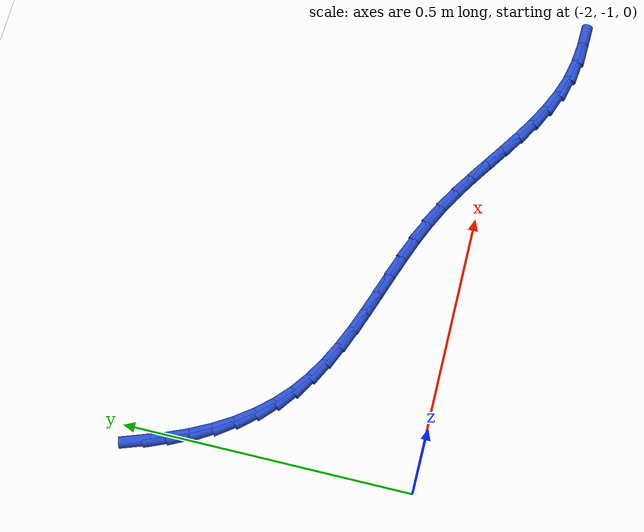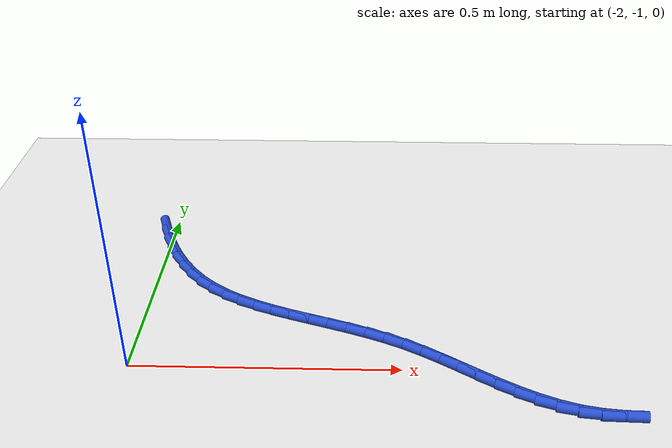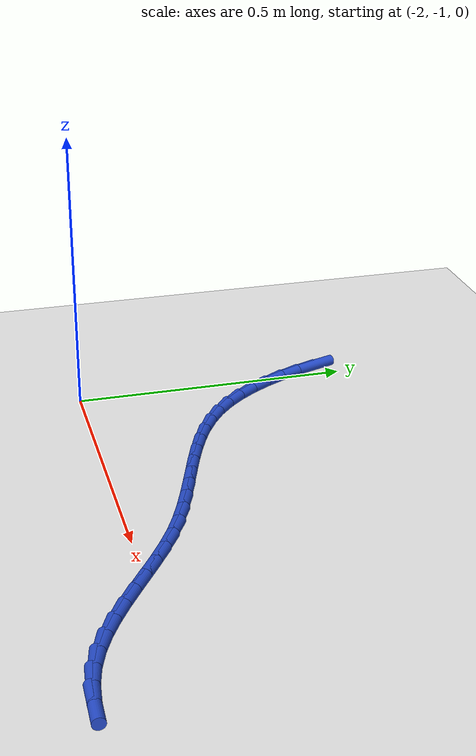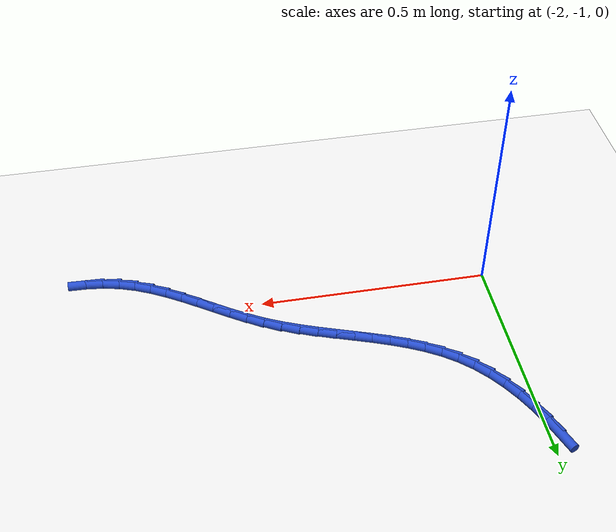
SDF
<sdf version="1.6">
 <world name="default">
  <model name="ground_plane">
   <static>1</static>
   <link name="link">
    <collision name="collision">
     <geometry><plane><normal>0 0 1</normal><size>100 100</size></plane></geometry>
     <surface><friction><ode><mu>100</mu><mu2>50</mu2></ode></friction></surface>
    </collision>
    <visual name="visual">
     <cast_shadows>0</cast_shadows>
     <geometry><plane><normal>0 0 1</normal><size>100 100</size></plane></geometry>
     <material>
      <script><uri>file://media/materials/scripts/gazebo.material</uri><name>Gazebo/WhiteGlow</name></script>
     </material>
    </visual>
   </link>
  </model>
  <model name="line">
   <link name="link_105">
    <pose>-2.020047119603006 -0.5403624268742906 0.01 0 1.57 -1.232494982980391</pose>
    <collision name="collision">
     <geometry><cylinder><radius>0.01</radius><length>0.08</length></cylinder></geometry>
    </collision>
    <visual name="visual">
     <material>
      <script><name>Gazebo/Blue</name><uri>file://media/materials/scripts/gazebo.material</uri></script>
     </material>
     <geometry><cylinder><radius>0.01</radius><length>0.08</length></cylinder></geometry>
    </visual>
   </link>
   <link name="link_106">
    <pose>-2.0069029254073816 -0.5777222687783851 0.01 0 1.57 -1.1684820234117692</pose>
    <collision name="collision">
     <geometry><cylinder><radius>0.01</radius><length>0.08</length></cylinder></geometry>
    </collision>
    <visual name="visual">
     <material>
      <script><name>Gazebo/Blue</name><uri>file://media/materials/scripts/gazebo.material</uri></script>
     </material>
     <geometry><cylinder><radius>0.01</radius><length>0.08</length></cylinder></geometry>
    </visual>
   </link>
   <link name="link_107">
    <pose>-1.991450697756604 -0.6140356885646838 0.01 0 1.57 -1.09928835004914</pose>
    <collision name="collision">
     <geometry><cylinder><radius>0.01</radius><length>0.08</length></cylinder></geometry>
    </collision>
    <visual name="visual">
     <material>
      <script><name>Gazebo/Blue</name><uri>file://media/materials/scripts/gazebo.material</uri></script>
     </material>
     <geometry><cylinder><radius>0.01</radius><length>0.08</length></cylinder></geometry>
    </visual>
   </link>
   <link name="link_108">
    <pose>-1.9736758828556353 -0.6488975337726277 0.01 0 1.57 -1.0235238310936277</pose>
    <collision name="collision">
     <geometry><cylinder><radius>0.01</radius><length>0.08</length></cylinder></geometry>
    </collision>
    <visual name="visual">
     <material>
      <script><name>Gazebo/Blue</name><uri>file://media/materials/scripts/gazebo.material</uri></script>
     </material>
     <geometry><cylinder><radius>0.01</radius><length>0.08</length></cylinder></geometry>
    </visual>
   </link>
   <link name="link_109">
    <pose>-1.9535639269094336 -0.6819026519416584 0.01 0 1.57 -0.9397712680482811</pose>
    <collision name="collision">
     <geometry><cylinder><radius>0.01</radius><length>0.08</length></cylinder></geometry>
    </collision>
    <visual name="visual">
     <material>
      <script><name>Gazebo/Blue</name><uri>file://media/materials/scripts/gazebo.material</uri></script>
     </material>
     <geometry><cylinder><radius>0.01</radius><length>0.08</length></cylinder></geometry>
    </visual>
   </link>
   <link name="link_110">
    <pose>-1.93110027612296 -0.7126458906112154 0.01 0 1.57 -0.8466811147038907</pose>
    <collision name="collision">
     <geometry><cylinder><radius>0.01</radius><length>0.08</length></cylinder></geometry>
    </collision>
    <visual name="visual">
     <material>
      <script><name>Gazebo/Blue</name><uri>file://media/materials/scripts/gazebo.material</uri></script>
     </material>
     <geometry><cylinder><radius>0.01</radius><length>0.08</length></cylinder></geometry>
    </visual>
   </link>
   <link name="link_111">
    <pose>-1.906270376701175 -0.7407220973207403 0.01 0 1.57 -0.7431831060266758</pose>
    <collision name="collision">
     <geometry><cylinder><radius>0.01</radius><length>0.08</length></cylinder></geometry>
    </collision>
    <visual name="visual">
     <material>
      <script><name>Gazebo/Blue</name><uri>file://media/materials/scripts/gazebo.material</uri></script>
     </material>
     <geometry><cylinder><radius>0.01</radius><length>0.08</length></cylinder></geometry>
    </visual>
   </link>
   <link name="link_112">
    <pose>-1.8790599693059928 -0.7657269252111429 0.01 0 1.57 -0.6356111946233544</pose>
    <collision name="collision">
     <geometry><cylinder><radius>0.01</radius><length>0.08</length></cylinder></geometry>
    </collision>
    <visual name="visual">
     <material>
      <script><name>Gazebo/Blue</name><uri>file://media/materials/scripts/gazebo.material</uri></script>
     </material>
     <geometry><cylinder><radius>0.01</radius><length>0.08</length></cylinder></geometry>
    </visual>
   </link>
   <link name="link_113">
    <pose>-1.849544598560535 -0.7875017210695041 0.01 0 1.57 -0.5418009422258452</pose>
    <collision name="collision">
     <geometry><cylinder><radius>0.01</radius><length>0.08</length></cylinder></geometry>
    </collision>
    <visual name="visual">
     <material>
      <script><name>Gazebo/Blue</name><uri>file://media/materials/scripts/gazebo.material</uri></script>
     </material>
     <geometry><cylinder><radius>0.01</radius><length>0.08</length></cylinder></geometry>
    </visual>
   </link>
   <link name="link_114">
    <pose>-1.8180156578913715 -0.8064783699935564 0.01 0 1.57 -0.4657555373181017</pose>
    <collision name="collision">
     <geometry><cylinder><radius>0.01</radius><length>0.08</length></cylinder></geometry>
    </collision>
    <visual name="visual">
     <material>
      <script><name>Gazebo/Blue</name><uri>file://media/materials/scripts/gazebo.material</uri></script>
     </material>
     <geometry><cylinder><radius>0.01</radius><length>0.08</length></cylinder></geometry>
    </visual>
   </link>
   <link name="link_115">
    <pose>-1.7847963075737585 -0.8231756676446296 0.01 0 1.57 -0.4076709689459269</pose>
    <collision name="collision">
     <geometry><cylinder><radius>0.01</radius><length>0.08</length></cylinder></geometry>
    </collision>
    <visual name="visual">
     <material>
      <script><name>Gazebo/Blue</name><uri>file://media/materials/scripts/gazebo.material</uri></script>
     </material>
     <geometry><cylinder><radius>0.01</radius><length>0.08</length></cylinder></geometry>
    </visual>
   </link>
   <link name="link_116">
    <pose>-1.7502097078829548 -0.8381124096840531 0.01 0 1.57 -0.36695062031981823</pose>
    <collision name="collision">
     <geometry><cylinder><radius>0.01</radius><length>0.08</length></cylinder></geometry>
    </collision>
    <visual name="visual">
     <material>
      <script><name>Gazebo/Blue</name><uri>file://media/materials/scripts/gazebo.material</uri></script>
     </material>
     <geometry><cylinder><radius>0.01</radius><length>0.08</length></cylinder></geometry>
    </visual>
   </link>
   <link name="link_117">
    <pose>-1.7145790190942183 -0.851807391773158 0.01 0 1.57 -0.34276279827969464</pose>
    <collision name="collision">
     <geometry><cylinder><radius>0.01</radius><length>0.08</length></cylinder></geometry>
    </collision>
    <visual name="visual">
     <material>
      <script><name>Gazebo/Blue</name><uri>file://media/materials/scripts/gazebo.material</uri></script>
     </material>
     <geometry><cylinder><radius>0.01</radius><length>0.08</length></cylinder></geometry>
    </visual>
   </link>
   <link name="link_118">
    <pose>-1.6782274014828058 -0.8647794095732736 0.01 0 1.57 -0.3343836962771723</pose>
    <collision name="collision">
     <geometry><cylinder><radius>0.01</radius><length>0.08</length></cylinder></geometry>
    </collision>
    <visual name="visual">
     <material>
      <script><name>Gazebo/Blue</name><uri>file://media/materials/scripts/gazebo.material</uri></script>
     </material>
     <geometry><cylinder><radius>0.01</radius><length>0.08</length></cylinder></geometry>
    </visual>
   </link>
   <link name="link_119">
    <pose>-1.641478015323975 -0.8775472587457303 0.01 0 1.57 -0.3413623392494752</pose>
    <collision name="collision">
     <geometry><cylinder><radius>0.01</radius><length>0.08</length></cylinder></geometry>
    </collision>
    <visual name="visual">
     <material>
      <script><name>Gazebo/Blue</name><uri>file://media/materials/scripts/gazebo.material</uri></script>
     </material>
     <geometry><cylinder><radius>0.01</radius><length>0.08</length></cylinder></geometry>
    </visual>
   </link>
   <link name="link_120">
    <pose>-1.6046540208929831 -0.8906297349518579 0.01 0 1.57 -0.3635586043932918</pose>
    <collision name="collision">
     <geometry><cylinder><radius>0.01</radius><length>0.08</length></cylinder></geometry>
    </collision>
    <visual name="visual">
     <material>
      <script><name>Gazebo/Blue</name><uri>file://media/materials/scripts/gazebo.material</uri></script>
     </material>
     <geometry><cylinder><radius>0.01</radius><length>0.08</length></cylinder></geometry>
    </visual>
   </link>
   <link name="link_121">
    <pose>-1.5680785784650888 -0.9045456338529864 0.01 0 1.57 -0.40108302827436554</pose>
    <collision name="collision">
     <geometry><cylinder><radius>0.01</radius><length>0.08</length></cylinder></geometry>
    </collision>
    <visual name="visual">
     <material>
      <script><name>Gazebo/Blue</name><uri>file://media/materials/scripts/gazebo.material</uri></script>
     </material>
     <geometry><cylinder><radius>0.01</radius><length>0.08</length></cylinder></geometry>
    </visual>
   </link>
   <link name="link_122">
    <pose>-1.5320748483155495 -0.919813751110446 0.01 0 1.57 -0.4541338656241375</pose>
    <collision name="collision">
     <geometry><cylinder><radius>0.01</radius><length>0.08</length></cylinder></geometry>
    </collision>
    <visual name="visual">
     <material>
      <script><name>Gazebo/Blue</name><uri>file://media/materials/scripts/gazebo.material</uri></script>
     </material>
     <geometry><cylinder><radius>0.01</radius><length>0.08</length></cylinder></geometry>
    </visual>
   </link>
   <link name="link_123">
    <pose>-1.4969658883533103 -0.9369526732650602 0.01 0 1.57 -0.5150519055747438</pose>
    <collision name="collision">
     <geometry><cylinder><radius>0.01</radius><length>0.08</length></cylinder></geometry>
    </collision>
    <visual name="visual">
     <material>
      <script><name>Gazebo/Blue</name><uri>file://media/materials/scripts/gazebo.material</uri></script>
     </material>
     <geometry><cylinder><radius>0.01</radius><length>0.08</length></cylinder></geometry>
    </visual>
   </link>
   <link name="link_124">
    <pose>-1.4629422894788355 -0.9562103747078321 0.01 0 1.57 -0.5609808548505267</pose>
    <collision name="collision">
     <geometry><cylinder><radius>0.01</radius><length>0.08</length></cylinder></geometry>
    </collision>
    <visual name="visual">
     <material>
      <script><name>Gazebo/Blue</name><uri>file://media/materials/scripts/gazebo.material</uri></script>
     </material>
     <geometry><cylinder><radius>0.01</radius><length>0.08</length></cylinder></geometry>
    </visual>
   </link>
   <link name="link_125">
    <pose>-1.4298020974052525 -0.9770329131996058 0.01 0 1.57 -0.5879639033756182</pose>
    <collision name="collision">
     <geometry><cylinder><radius>0.01</radius><length>0.08</length></cylinder></geometry>
    </collision>
    <visual name="visual">
     <material>
      <script><name>Gazebo/Blue</name><uri>file://media/materials/scripts/gazebo.material</uri></script>
     </material>
     <geometry><cylinder><radius>0.01</radius><length>0.08</length></cylinder></geometry>
    </visual>
   </link>
   <link name="link_126">
    <pose>-1.3972709866371582 -0.998718501928079 0.01 0 1.57 -0.5961847982229376</pose>
    <collision name="collision">
     <geometry><cylinder><radius>0.01</radius><length>0.08</length></cylinder></geometry>
    </collision>
    <visual name="visual">
     <material>
      <script><name>Gazebo/Blue</name><uri>file://media/materials/scripts/gazebo.material</uri></script>
     </material>
     <geometry><cylinder><radius>0.01</radius><length>0.08</length></cylinder></geometry>
    </visual>
   </link>
   <link name="link_127">
    <pose>-1.3650746316791538 -1.0205653540809503 0.01 0 1.57 -0.5854643994127197</pose>
    <collision name="collision">
     <geometry><cylinder><radius>0.01</radius><length>0.08</length></cylinder></geometry>
    </collision>
    <visual name="visual">
     <material>
      <script><name>Gazebo/Blue</name><uri>file://media/materials/scripts/gazebo.material</uri></script>
     </material>
     <geometry><cylinder><radius>0.01</radius><length>0.08</length></cylinder></geometry>
    </visual>
   </link>
   <link name="link_128">
    <pose>-1.3329387070358376 -1.0418716828459174 0.01 0 1.57 -0.5551549225070603</pose>
    <collision name="collision">
     <geometry><cylinder><radius>0.01</radius><length>0.08</length></cylinder></geometry>
    </collision>
    <visual name="visual">
     <material>
      <script><name>Gazebo/Blue</name><uri>file://media/materials/scripts/gazebo.material</uri></script>
     </material>
     <geometry><cylinder><radius>0.01</radius><length>0.08</length></cylinder></geometry>
    </visual>
   </link>
   <link name="link_129">
    <pose>-1.3005888872118079 -1.0619357014106787 0.01 0 1.57 -0.5042215691060516</pose>
    <collision name="collision">
     <geometry><cylinder><radius>0.01</radius><length>0.08</length></cylinder></geometry>
    </collision>
    <visual name="visual">
     <material>
      <script><name>Gazebo/Blue</name><uri>file://media/materials/scripts/gazebo.material</uri></script>
     </material>
     <geometry><cylinder><radius>0.01</radius><length>0.08</length></cylinder></geometry>
    </visual>
   </link>
   <link name="link_130">
    <pose>-1.267750846711665 -1.080055622962933 0.01 0 1.57 -0.4315750975223852</pose>
    <collision name="collision">
     <geometry><cylinder><radius>0.01</radius><length>0.08</length></cylinder></geometry>
    </collision>
    <visual name="visual">
     <material>
      <script><name>Gazebo/Blue</name><uri>file://media/materials/scripts/gazebo.material</uri></script>
     </material>
     <geometry><cylinder><radius>0.01</radius><length>0.08</length></cylinder></geometry>
    </visual>
   </link>
   <link name="link_131">
    <pose>-1.234150260040006 -1.0955296606903782 0.01 0 1.57 -0.33675857788828223</pose>
    <collision name="collision">
     <geometry><cylinder><radius>0.01</radius><length>0.08</length></cylinder></geometry>
    </collision>
    <visual name="visual">
     <material>
      <script><name>Gazebo/Blue</name><uri>file://media/materials/scripts/gazebo.material</uri></script>
     </material>
     <geometry><cylinder><radius>0.01</radius><length>0.08</length></cylinder></geometry>
    </visual>
   </link>
   <link name="link_132">
    <pose>-1.1995128017014323 -1.1076560277807126 0.01 0 1.57 -0.22267635427730165</pose>
    <collision name="collision">
     <geometry><cylinder><radius>0.01</radius><length>0.08</length></cylinder></geometry>
    </collision>
    <visual name="visual">
     <material>
      <script><name>Gazebo/Blue</name><uri>file://media/materials/scripts/gazebo.material</uri></script>
     </material>
     <geometry><cylinder><radius>0.01</radius><length>0.08</length></cylinder></geometry>
    </visual>
   </link>
   <link name="link_133">
    <pose>-1.1635878100970458 -1.1157905702674762 0.01 0 1.57 -0.11492328385121932</pose>
    <collision name="collision">
     <geometry><cylinder><radius>0.01</radius><length>0.08</length></cylinder></geometry>
    </collision>
    <visual name="visual">
     <material>
      <script><name>Gazebo/Blue</name><uri>file://media/materials/scripts/gazebo.material</uri></script>
     </material>
     <geometry><cylinder><radius>0.01</radius><length>0.08</length></cylinder></geometry>
    </visual>
   </link>
   <link name="link_134">
    <pose>-1.1264483842539639 -1.1200776453343082 0.01 0 1.57 -0.030355879327005293</pose>
    <collision name="collision">
     <geometry><cylinder><radius>0.01</radius><length>0.08</length></cylinder></geometry>
    </collision>
    <visual name="visual">
     <material>
      <script><name>Gazebo/Blue</name><uri>file://media/materials/scripts/gazebo.material</uri></script>
     </material>
     <geometry><cylinder><radius>0.01</radius><length>0.08</length></cylinder></geometry>
    </visual>
   </link>
  </model>
 </world>
</sdf>
